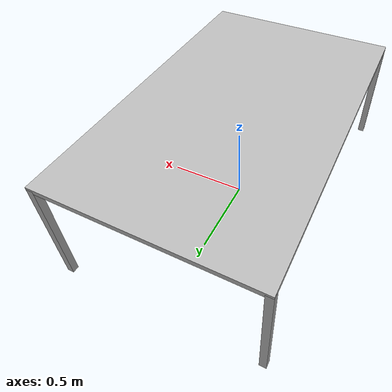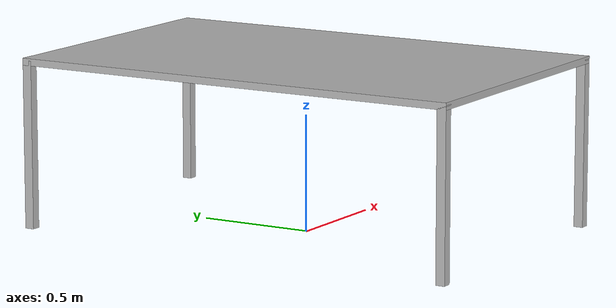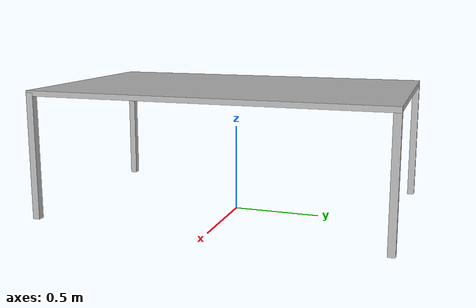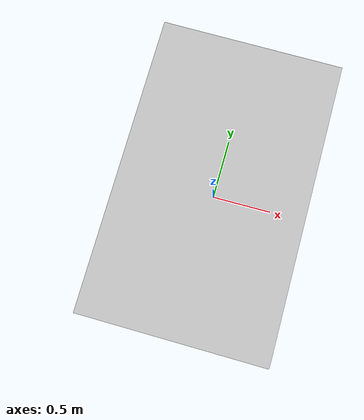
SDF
<?xml version='1.0'?>

<sdf version="1.5">
    <model name="table">
        <static>true</static>
        <link name = "world">
            <pose frame=''>0 0 0 0 0 0</pose>
            <inertial>
                <pose frame=''>0 0 0.0 0 0 0</pose>
                <mass>0.0</mass>
                <inertia>
                    <ixx>0.</ixx>
                    <ixy>0</ixy>
                    <ixz>0</ixz>
                    <iyy>0.</iyy>
                    <iyz>0</iyz>
                    <izz>0.</izz>
                </inertia>
            </inertial>
        </link>
        <joint name="j_world" type="fixed">
            <child>tableTop</child>
            <parent>world</parent>
        </joint>
        <link name="tableTop">
            <pose frame=''>0 0 0.73 1.57 0 0</pose>
            <inertial>
                <pose frame=''>0 0 0.015 1.57 0 0</pose>
                <mass>1</mass>
                <inertia>
                    <ixx>100</ixx>
                    <ixy>0</ixy>
                    <ixz>0</ixz>
                    <iyy>100</iyy>
                    <iyz>0</iyz>
                    <izz>100</izz>
                </inertia>
            </inertial>

            <collision name="collision">
                <geometry>
                    <box>
                        <size>1.25 0.03 2.0</size>
                    </box>
                </geometry>
            </collision>
            <visual name="visual">
                <geometry>
                    <box>
                        <size>1.25 0.03 2.0</size>
                    </box>
                </geometry>
            </visual>
        </link>

            <link name="topLeft" >
                <pose frame=''>-0.605 -0.98 0.3775 0 0 0</pose>
                <inertial>
                    <pose frame=''>0.02 0.02 0.3575 0 0 0</pose>
                    <mass>1</mass>
                    <inertia>
                        <ixx>100</ixx>
                        <ixy>0</ixy>
                        <ixz>0</ixz>
                        <iyy>100</iyy>
                        <iyz>0</iyz>
                        <izz>100</izz>
                    </inertia>
                </inertial>

                <collision name="collision">
                    <geometry>
                        <box>
                            <size>0.04 0.04 0.715</size>
                        </box>
                    </geometry>
                </collision>
                <visual name="visual">
                    <geometry>
                        <box>
                            <size>0.04 0.04 0.715</size>
                        </box>
                    </geometry>
                </visual>
            </link>

            <joint name="J_topLeft" type="fixed">
                <child>topLeft</child>
                <parent>tableTop</parent>
            </joint>

            <link name="topRight" >
                <pose frame=''>0.605 -0.98 0.3775 0 0 0</pose>
                <inertial>
                    <pose frame=''>0.02 0.02 0.3575 0 0 0</pose>
                    <mass>1</mass>
                    <inertia>
                        <ixx>100</ixx>
                        <ixy>0</ixy>
                        <ixz>0</ixz>
                        <iyy>100</iyy>
                        <iyz>0</iyz>
                        <izz>100</izz>
                    </inertia>
                </inertial>

                <collision name="collision">
                    <geometry>
                        <box>
                            <size>0.04 0.04 0.715</size>
                        </box>
                    </geometry>
                </collision>
                <visual name="visual">
                    <geometry>
                        <box>
                            <size>0.04 0.04 0.715</size>
                        </box>
                    </geometry>
                </visual>
            </link>

            <joint name="J_topRight" type="fixed">
                <child>topRight</child>
                <parent>tableTop</parent>
            </joint>

            <link name="buttomLeft" >
                <pose frame=''>-0.605 0.98 0.3775 0 0 0</pose>
                <inertial>
                    <pose frame=''>0.02 0.02 0.3575 0 0 0</pose>
                    <mass>1</mass>
                    <inertia>
                        <ixx>100</ixx>
                        <ixy>0</ixy>
                        <ixz>0</ixz>
                        <iyy>100</iyy>
                        <iyz>0</iyz>
                        <izz>100</izz>
                    </inertia>
                </inertial>

                <collision name="collision">
                    <geometry>
                        <box>
                            <size>0.04 0.04 0.715</size>
                        </box>
                    </geometry>
                </collision>
                <visual name="visual">
                    <geometry>
                        <box>
                            <size>0.04 0.04 0.715</size>
                        </box>
                    </geometry>
                </visual>
            </link>

            <joint name="J_buttomLeft" type="fixed">
                <child>buttomLeft</child>
                <parent>tableTop</parent>
            </joint>

            <link name="buttomRight" >
                <pose frame=''>0.605 0.98 0.3775 0 0 0</pose>
                <inertial>
                    <pose frame=''>0.02 0.02 0.3575 0 0 0</pose>
                    <mass>1</mass>
                    <inertia>
                        <ixx>100</ixx>
                        <ixy>0</ixy>
                        <ixz>0</ixz>
                        <iyy>100</iyy>
                        <iyz>0</iyz>
                        <izz>100</izz>
                    </inertia>
                </inertial>

                <collision name="collision">
                    <geometry>
                        <box>
                            <size>0.04 0.04 0.715</size>
                        </box>
                    </geometry>
                </collision>
                <visual name="visual">
                    <geometry>
                        <box>
                            <size>0.04 0.04 0.715</size>
                        </box>
                    </geometry>
                </visual>
            </link>

            <joint name="J_buttomRight" type="fixed">
                <child>buttomRight</child>
                <parent>tableTop</parent>
            </joint>

    </model>
</sdf>
